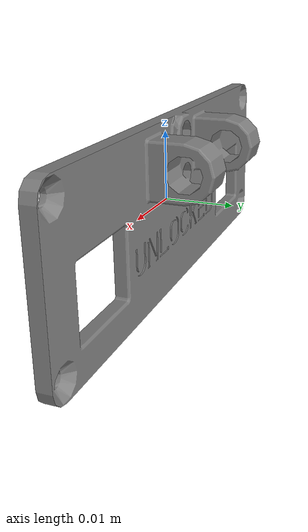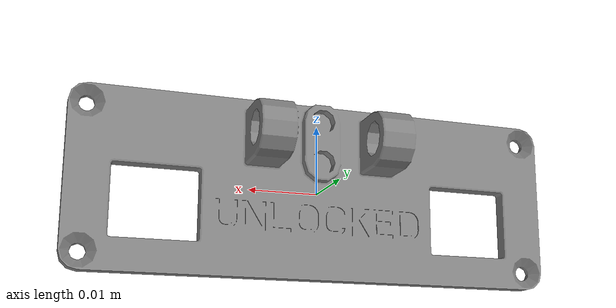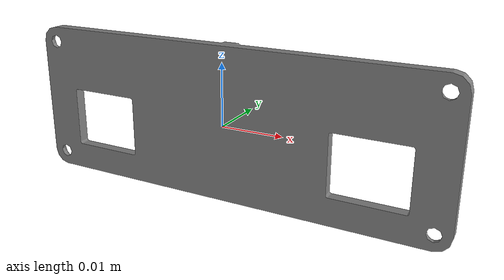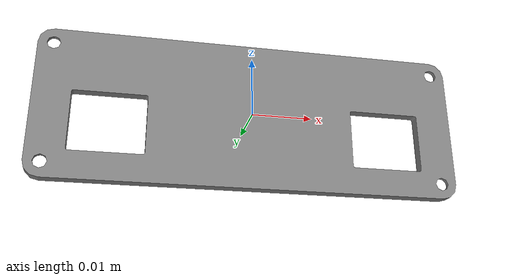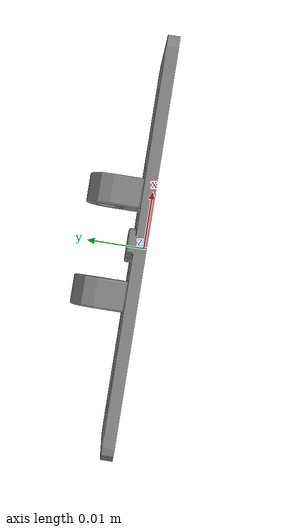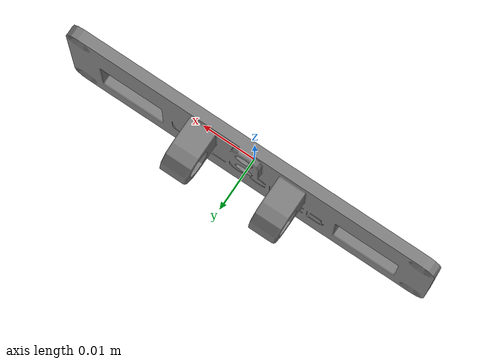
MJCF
<mujoco model="csm_latch_cover">
  <default>
    <default class="visual">
      <geom group="2" type="mesh" contype="0" conaffinity="0"/>
    </default>
    <default class="collision">
      <geom group="3" type="mesh"/>
    </default>
  </default>
  <asset>
    <material name="mtl_csm_latch_cover" specular="0.20000000000000004" shininess="1.0" rgba="0.50196078 0.50196078 0.50196078 1.0"/>
    <mesh file="csm_latch_cover.obj"/>
  </asset>
  <worldbody>
    <body name="csm_latch_cover">
      <geom material="mtl_csm_latch_cover" mesh="csm_latch_cover" class="visual"/>
      <geom mesh="csm_latch_cover" class="collision"/>
    </body>
  </worldbody>
</mujoco>
